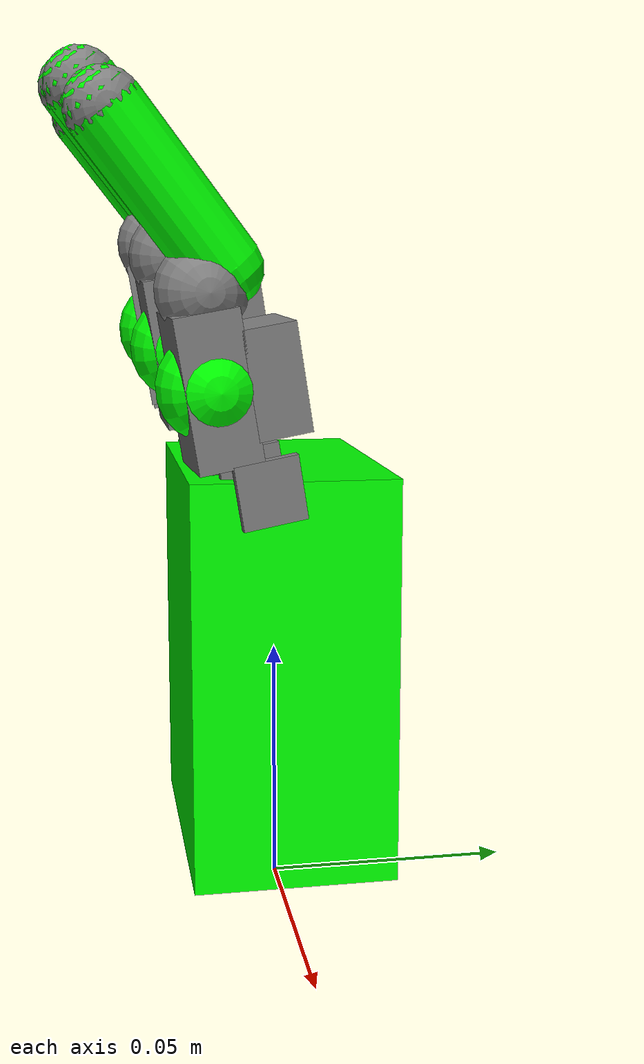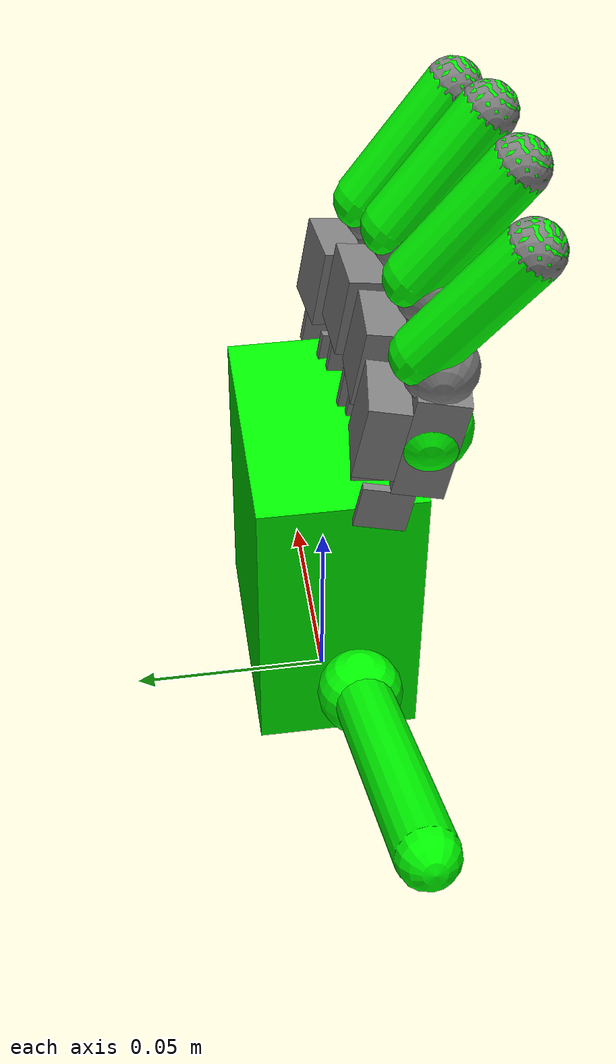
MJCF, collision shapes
<mujoco model="ability_hand">
  <compiler angle="radian" meshdir="assets/" />

  <default>
    <!-- disable all contacts and use explicit collision pairs -->
    <geom density="800" condim="1" contype="0" conaffinity="0" />
    <!-- with this setting, the response time is around 1s -->
    <position kp="100" dampratio="1.0" inheritrange="1" />
    <joint damping="0.0" armature="1.0" frictionloss="0.0" />
    <site size="0.01" type="sphere" rgba="1 0 0 1" group="3" />
    <default class="base">
      <position kp="300" dampratio="3.0" inheritrange="1" />
    </default>
  </default>

  <asset>
    <texture type="skybox" builtin="gradient" rgb1="0.3 0.5 0.7" rgb2="0 0 0" width="512"
      height="3072" />
    <texture type="2d" name="left_groundplane" builtin="checker" mark="edge" rgb1="0.2 0.3 0.4"
      rgb2="0.1 0.2 0.3"
      markrgb="0.8 0.8 0.8" width="300" height="300" />
    <material name="left_groundplane" texture="left_groundplane" texuniform="true"
      texrepeat="5 5"
      reflectance="0.2" />
    <mesh name="left_wristmesh" file="wristmesh.obj" />
    <mesh name="left_wristmesh_C" file="wristmesh_C.obj" />
    <mesh name="left_FB_palm_ref_MIR" file="FB_palm_ref_MIR.obj" />
    <mesh name="left_thumb-F1-MIR" file="thumb-F1-MIR.obj" />
    <mesh name="left_thumb-F1-MIR_C" file="thumb-F1-MIR_C.obj" />
    <mesh name="left_thumb-F2" file="thumb-F2.obj" />
    <mesh name="left_thumb-F2_C" file="thumb-F2_C.obj" />
    <mesh name="left_idx-F1" file="idx-F1.obj" />
    <mesh name="left_idx-F2" file="idx-F2.obj" />
    <mesh name="left_idx-F2_C" file="idx-F2_C.obj" />
  </asset>

  <worldbody>
    <light pos="0 0 3.5" dir="0 0 -1" directional="false" />
    <body name="R_forearm_ty_link">
      <camera name="left_track" pos="-0.868 -0.348 -0.175"
        xyaxes="-0.037 0.999 -0.000 -0.011 -0.000 1.000" />
      <inertial pos="0 0 0" mass="0.1" diaginertia="0.01 0.01 0.01" />
      <joint name="R_forearm_tx_link_joint" pos="0 0 0" axis="1 0 0" type="slide" range="-5 5"
      />
      <body name="R_forearm_tz_link">
        <inertial pos="0 0 0" mass="0.1" diaginertia="0.01 0.01 0.01" />
        <joint name="R_forearm_ty_link_joint" pos="0 0 0" axis="0 1 0" type="slide" range="-5 5"
        />
        <body name="R_forearm_roll_link">
          <inertial pos="0 0 0" mass="0.1" diaginertia="0.01 0.01 0.01" />
          <joint name="R_forearm_tz_link_joint" pos="0 0 0" axis="0 0 1" type="slide" range="-5 5"
          />
          <body name="R_forearm_pitch_link">
            <inertial pos="0 0 0" mass="0.1" diaginertia="0.01 0.01 0.01" />
            <joint name="R_forearm_roll_link_joint" pos="0 0 0" axis="0 0 1" range="-6.2 6.2"
            />
            <body name="R_forearm_yaw_link">
              <inertial pos="0 0 0" mass="0.1" diaginertia="0.01 0.01 0.01" />
              <joint name="R_forearm_pitch_link_joint" pos="0 0 0" axis="1 0 0" range="-6.2 6.2"
              />
              <body name="left_base">
                <inertial pos="0.00928558 -0.0120495 0.0097618"
                  quat="0.206138 0.349162 0.787163 0.464724" mass="0.4"
                  diaginertia="0.00194995 0.00194995 0.00178617" />
                <joint name="R_forearm_yaw_link_joint" pos="0 0 0" axis="0 -1 0" range="-6.2 6.2"
                />
                <geom name="left_wrist_mesh" type="mesh" contype="0" conaffinity="0" group="1"
                  density="0" mesh="left_wristmesh" />
                <geom name="collision_hand_left_palm_0" type="mesh" mesh="left_wristmesh_C"
                  group="3" />
                <geom name="left_palm_mesh" pos="-0.0240477 0.00378125 0.0323296"
                  quat="0.0442297 0.00061027 -0.999021 -2.70192e-05" type="mesh" contype="0"
                  conaffinity="0" group="1" density="0" mesh="left_FB_palm_ref_MIR" />
                <geom name="collision_hand_left_palm_1" pos="-0.0240477 0.00378125 0.0323296"
                  quat="0.0442297 0.00061027 -0.999021 -2.70192e-05" type="mesh"
                  mesh="left_FB_palm_ref_MIR" group="3" />
                <geom type="box" name="collision_hand_left_palm_2" size="0.03 0.02 0.04"
                  pos="0 0 0.05" contype="0" conaffinity="0" group="3"
                  density="0" rgba="0 1 0 1" />
                <site name="left_palm" pos="0 0 0" type="box"
                  size="0.01 0.02 0.03" quat="1 0 0 -1" />
                <body name="left_thumb_L1" pos="-0.0240477 0.00378125 0.0323296"
                  quat="-0.0947972 0.0440301 -0.00419696 0.994514">
                  <inertial pos="0.014606 -0.00189085 -0.00311554"
                    quat="0.306728 0.531258 0.293089 0.733336" mass="0.00268342"
                    diaginertia="8.14795e-05 7.42718e-05 1.14409e-05" />
                  <joint name="left_thumb_q1" pos="0 0 0" axis="0 0 -1" range="-1.8 -0.6"
                  />
                  <geom name="left_thumb_mesh_1" pos="0.0278284 0 0.0147507"
                    quat="0.608761 0.793353 0 0"
                    type="mesh" contype="0" conaffinity="0" group="1" density="0"
                    mesh="left_thumb-F1-MIR" />
                  <geom name="collision_hand_left_thumb_2" pos="0.0278284 0 0.0147507"
                    quat="0.608761 0.793353 0 0" type="mesh"
                    mesh="left_thumb-F1-MIR_C" group="3" />
                  <geom name="collision_hand_left_thumb_3" type="sphere" size="0.01"
                    pos="0.0278284 0 0.0147507" contype="0" conaffinity="0" group="3"
                    density="0" rgba="0 1 0 1" />
                  <body name="left_thumb_L2" pos="0.0278284 0 0.0147507"
                    quat="0.608761 0.793353 0 0">
                    <inertial pos="0.0300205 0.00559476 -0.00415044"
                      quat="0.00721249 0.656735 -0.223684 0.720148" mass="0.0055"
                      diaginertia="0.00180207 0.00170892 0.000287855" />
                    <joint name="left_thumb_q2" pos="0 0 0" axis="0 0 1" range="0 1.0"
                    />
                    <geom name="left_thumb_mesh_2" pos="0.0651867 0.0233402 0.00393483"
                      quat="3.21978e-07 -0.985259 -0.171069 5.59046e-08" type="mesh" contype="0"
                      conaffinity="0" group="1" density="0" mesh="left_thumb-F2" />
                    <geom name="collision_hand_left_thumb_1" pos="0.0651867 0.0233402 0.00393483"
                      quat="3.21978e-07 -0.985259 -0.171069 5.59046e-08" type="mesh"
                      mesh="left_thumb-F2_C" group="3" />
                    <geom name="collision_hand_left_thumb_0" type="capsule" size="0.007"
                      fromto="0 0 0 0.0651867 0.0233402 0.00393483" contype="0" conaffinity="0"
                      group="3"
                      density="0" rgba="0 1 0 1" />
                    <site name="left_thumb_tip" pos="0.0651867 0.0233402 0.00393483" />
                    <site name="track_hand_left_thumb_tip" pos="0.0651867 0.0233402 0.00393483" />
                    <site name="trace_hand_left_thumb_tip" pos="0.0651867 0.0233402 0.00393483" />
                  </body>
                </body>
                <body name="left_index_L1" pos="-0.0279216 -0.00927034 0.0958706"
                  quat="0.685906 0.0469401 -0.714459 -0.129917">
                  <inertial pos="0.0224191 -0.000157982 -1.31987e-05"
                    quat="-0.00406251 0.706621 0.00934715 0.707518" mass="0.00635888"
                    diaginertia="0.000381765 0.000369601 2.96432e-05" />
                  <joint name="left_index_q1" pos="0 0 0" axis="0 0 -1" range="0 1.0"
                  />
                  <geom name="left_index_mesh_1" pos="0.0384727 0.0032577 0"
                    quat="0.999108 0 0 0.0422244" type="mesh" contype="0" conaffinity="0" group="1"
                    density="0" mesh="left_idx-F1" />
                  <geom name="collision_hand_left_index_2" size="0.0085" pos="0.036 -0.00175 0"
                    group="3" />
                  <geom name="collision_hand_left_index_3" size="0.014 0.006 0.008"
                    pos="0.019 -0.0045 0" quat="0.999108 0 0 0.0422374"
                    type="box" group="3" />
                  <geom name="collision_hand_left_index_4" size="0.01 0.005 0.008"
                    pos="0.018 0.006 0" quat="0.999108 0 0 0.0422374"
                    type="box" group="3" />
                  <geom name="collision_hand_left_index_5" size="0.006 0.006 0.001"
                    pos="-0.001 0 0.007" quat="0.999108 0 0 0.0422374"
                    type="box" group="3" />
                  <geom name="collision_hand_left_index_6" size="0.006 0.006 0.001"
                    pos="-0.001 0 -0.007" quat="0.999108 0 0 0.0422374"
                    type="box" group="3" />
                  <geom name="collision_hand_left_index_1" type="sphere" size="0.01"
                    pos="0.019 -0.0045 0" contype="0" conaffinity="0" group="3"
                    density="0" rgba="0 1 0 1" />
                  <body name="left_index_L2" pos="0.0384727 0.0032577 0"
                    quat="0.999108 0 0 0.0422244">
                    <inertial pos="0.0133682 -0.00875392 -2.886e-05"
                      quat="-0.161363 0.673074 0.216775 0.688434" mass="0.00645"
                      diaginertia="0.000264645 0.000263553 1.71391e-05" />
                    <joint name="left_index_q2" pos="0 0 0" axis="0 0 -1" range="0 1.0"
                    />
                    <geom name="left_index_mesh_2" pos="0.0091241 0 0" quat="1 0 0 0" type="mesh"
                      contype="0" conaffinity="0" group="1" density="0" mesh="left_idx-F2" />
                    <geom type="mesh" mesh="left_idx-F2_C" />
                    <geom size="0.007" pos="0.03 -0.016 0" />
                    <geom name="collision_hand_left_index_0" type="capsule" size="0.007"
                      fromto="0 0 0 0.03 -0.016 0" contype="0" conaffinity="0" group="3"
                      density="0" rgba="0 1 0 1" />
                    <site name="left_index_tip" pos="0.03 -0.016 0" />
                    <site name="track_hand_left_index_tip" pos="0.03 -0.016 0" />
                    <site name="trace_hand_left_index_tip" pos="0.03 -0.016 0" />
                  </body>
                </body>
                <body name="left_middle_L1" pos="-0.00841718 -0.0115172 0.0990634"
                  quat="0.704562 0.0715738 -0.698395 -0.103508">
                  <inertial pos="0.0224191 -0.000157982 -1.31987e-05"
                    quat="-0.00406251 0.706621 0.00934715 0.707518" mass="0.00635888"
                    diaginertia="0.000381765 0.000369601 2.96432e-05" />
                  <joint name="left_middle_q1" pos="0 0 0" axis="0 0 -1" range="0 1.0"
                  />
                  <geom name="left_middle_mesh_1" pos="0.0384727 0.0032577 0"
                    quat="0.999108 0 0 0.0422244" type="mesh" contype="0" conaffinity="0" group="1"
                    density="0" mesh="left_idx-F1" />
                  <geom size="0.0085" pos="0.036 -0.00175 0" />
                  <geom size="0.014 0.006 0.008" pos="0.019 -0.0045 0" quat="0.999108 0 0 0.0422374"
                    type="box" />
                  <geom size="0.01 0.005 0.008" pos="0.018 0.006 0" quat="0.999108 0 0 0.0422374"
                    type="box" />
                  <geom size="0.006 0.006 0.001" pos="-0.001 0 0.007" quat="0.999108 0 0 0.0422374"
                    type="box" />
                  <geom size="0.006 0.006 0.001" pos="-0.001 0 -0.007" quat="0.999108 0 0 0.0422374"
                    type="box" />
                  <geom name="collision_hand_left_middle_1" type="sphere" size="0.01"
                    pos="0.019 -0.0045 0" contype="0" conaffinity="0" group="3"
                    density="0" rgba="0 1 0 1" />
                  <body name="left_middle_L2" pos="0.0384727 0.0032577 0"
                    quat="0.999108 0 0 0.0422244">
                    <inertial pos="0.0133682 -0.00875392 -2.886e-05"
                      quat="-0.161363 0.673074 0.216775 0.688434" mass="0.00645"
                      diaginertia="0.000264645 0.000263553 1.71391e-05" />
                    <joint name="left_middle_q2" pos="0 0 0" axis="0 0 -1" range="0 1.0"
                    />
                    <geom name="left_middle_mesh_2" pos="0.0091241 0 0" quat="1 0 0 0" type="mesh"
                      contype="0" conaffinity="0" group="1" density="0" mesh="left_idx-F2" />
                    <geom type="mesh" mesh="left_idx-F2_C" />
                    <geom size="0.007" pos="0.03 -0.016 0" />
                    <geom name="collision_hand_left_middle_0" type="capsule" size="0.007"
                      fromto="0 0 0 0.03 -0.016 0" contype="0" conaffinity="0" group="3"
                      density="0" rgba="0 1 0 1" />
                    <site name="left_middle_tip" pos="0.03 -0.016 0" />
                    <site name="track_hand_left_middle_tip" pos="0.03 -0.016 0" />
                    <site name="trace_hand_left_middle_tip" pos="0.03 -0.016 0" />
                  </body>
                </body>
                <body name="left_ring_L1" pos="0.0117529 -0.0103946 0.0967038"
                  quat="0.721351 0.0986547 -0.681173 -0.0769649">
                  <inertial pos="0.0224191 -0.000157982 -1.31987e-05"
                    quat="-0.00406251 0.706621 0.00934715 0.707518" mass="0.00635888"
                    diaginertia="0.000381765 0.000369601 2.96432e-05" />
                  <joint name="left_ring_q1" pos="0 0 0" axis="0 0 -1" range="0 1.0"
                  />
                  <geom name="left_ring_mesh_1" pos="0.0384727 0.0032577 0"
                    quat="0.999108 0 0 0.0422244"
                    type="mesh" contype="0" conaffinity="0" group="1" density="0"
                    mesh="left_idx-F1" />
                  <geom size="0.0085" pos="0.036 -0.00175 0" />
                  <geom size="0.014 0.006 0.008" pos="0.019 -0.0045 0" quat="0.999108 0 0 0.0422374"
                    type="box" />
                  <geom size="0.01 0.005 0.008" pos="0.018 0.006 0" quat="0.999108 0 0 0.0422374"
                    type="box" />
                  <geom size="0.006 0.006 0.001" pos="-0.001 0 0.007" quat="0.999108 0 0 0.0422374"
                    type="box" />
                  <geom size="0.006 0.006 0.001" pos="-0.001 0 -0.007" quat="0.999108 0 0 0.0422374"
                    type="box" />
                  <geom name="collision_hand_left_ring_1" type="sphere" size="0.01"
                    pos="0.019 -0.0045 0" contype="0" conaffinity="0" group="3"
                    density="0" rgba="0 1 0 1" />
                  <body name="left_ring_L2" pos="0.0384727 0.0032577 0"
                    quat="0.999108 0 0 0.0422244">
                    <inertial pos="0.0133682 -0.00875392 -2.886e-05"
                      quat="-0.161363 0.673074 0.216775 0.688434" mass="0.00645"
                      diaginertia="0.000264645 0.000263553 1.71391e-05" />
                    <joint name="left_ring_q2" pos="0 0 0" axis="0 0 -1" range="0 1.0"
                    />
                    <geom name="left_ring_mesh_2" pos="0.0091241 0 0" quat="1 0 0 0" type="mesh"
                      contype="0" conaffinity="0" group="1" density="0" mesh="left_idx-F2" />
                    <geom type="mesh" mesh="left_idx-F2_C" />
                    <geom size="0.007" pos="0.03 -0.016 0" />
                    <geom name="collision_hand_left_ring_0" type="capsule" size="0.007"
                      fromto="0 0 0 0.03 -0.016 0" contype="0" conaffinity="0" group="3"
                      density="0" rgba="0 1 0 1" />
                    <site name="left_ring_tip" pos="0.03 -0.016 0" />
                    <site name="track_hand_left_ring_tip" pos="0.03 -0.016 0" />
                    <site name="trace_hand_left_ring_tip" pos="0.03 -0.016 0" />
                  </body>
                </body>
                <body name="left_pinky_L1" pos="0.0308633 -0.00716283 0.0907346"
                  quat="0.719226 0.122363 -0.681748 -0.0544096">
                  <inertial pos="0.0224191 -0.000157982 -1.31987e-05"
                    quat="-0.00406251 0.706621 0.00934715 0.707518" mass="0.00635888"
                    diaginertia="0.000381765 0.000369601 2.96432e-05" />
                  <joint name="left_pinky_q1" pos="0 0 0" axis="0 0 -1" range="0 1.0"
                  />
                  <geom name="left_pinky_mesh_1" pos="0.0384727 0.0032577 0"
                    quat="0.999108 0 0 0.0422244" type="mesh" contype="0" conaffinity="0" group="1"
                    density="0" mesh="left_idx-F1" />
                  <geom size="0.0085" pos="0.036 -0.00175 0" />
                  <geom size="0.014 0.006 0.008" pos="0.019 -0.0045 0" quat="0.999108 0 0 0.0422374"
                    type="box" />
                  <geom size="0.01 0.005 0.008" pos="0.018 0.006 0" quat="0.999108 0 0 0.0422374"
                    type="box" />
                  <geom size="0.006 0.006 0.001" pos="-0.001 0 0.007" quat="0.999108 0 0 0.0422374"
                    type="box" />
                  <geom size="0.006 0.006 0.001" pos="-0.001 0 -0.007" quat="0.999108 0 0 0.0422374"
                    type="box" />
                  <geom name="collision_hand_left_pinky_1" type="sphere" size="0.01"
                    pos="0.019 -0.0045 0" contype="0" conaffinity="0" group="3"
                    density="0" rgba="0 1 0 1" />
                  <body name="left_pinky_L2" pos="0.0384727 0.0032577 0"
                    quat="0.999108 0 0 0.0422244">
                    <inertial pos="0.0133682 -0.00875392 -2.886e-05"
                      quat="-0.161363 0.673074 0.216775 0.688434" mass="0.00645"
                      diaginertia="0.000264645 0.000263553 1.71391e-05" />
                    <joint name="left_pinky_q2" pos="0 0 0" axis="0 0 -1" range="0 1.0"
                    />
                    <geom name="left_pinky_mesh_2" pos="0.0091241 0 0" quat="1 0 0 0" type="mesh"
                      contype="0" conaffinity="0" group="1" density="0" mesh="left_idx-F2" />
                    <geom type="mesh" mesh="left_idx-F2_C" />
                    <geom size="0.007" pos="0.03 -0.016 0" />
                    <geom name="collision_hand_left_pinky_0" type="capsule" size="0.007"
                      fromto="0 0 0 0.03 -0.016 0" contype="0" conaffinity="0" group="3"
                      density="0" rgba="0 1 0 1" />
                    <site name="left_pinky_tip" pos="0.03 -0.016 0" />
                    <site name="track_hand_left_pinky_tip" pos="0.03 -0.016 0" />
                    <site name="trace_hand_left_pinky_tip" pos="0.03 -0.016 0" />
                  </body>
                </body>
              </body>
            </body>
          </body>
        </body>
      </body>
    </body>
  </worldbody>
  <actuator>
    <!-- Global position and rotation joints -->
    <position class="base" name="R_forearm_tx_position" joint="R_forearm_tx_link_joint" />
    <position class="base" name="R_forearm_ty_position" joint="R_forearm_ty_link_joint" />
    <position class="base" name="R_forearm_tz_position" joint="R_forearm_tz_link_joint" />
    <position class="base" name="R_forearm_roll_position" joint="R_forearm_roll_link_joint" />
    <position class="base" name="R_forearm_pitch_position" joint="R_forearm_pitch_link_joint" />
    <position class="base" name="R_forearm_yaw_position" joint="R_forearm_yaw_link_joint" />

    <!-- Thumb joints -->
    <position name="left_thumb_q1_position" joint="left_thumb_q1" />
    <position name="left_thumb_q2_position" joint="left_thumb_q2" />

    <!-- Index joints -->
    <position name="left_index_q1_position" joint="left_index_q1" />
    <position name="left_index_q2_position" joint="left_index_q2" />

    <!-- Middle joints -->
    <position name="left_middle_q1_position" joint="left_middle_q1" />
    <position name="left_middle_q2_position" joint="left_middle_q2" />

    <!-- Ring joints -->
    <position name="left_ring_q1_position" joint="left_ring_q1" />
    <position name="left_ring_q2_position" joint="left_ring_q2" />

    <!-- Pinky joints -->
    <position name="left_pinky_q1_position" joint="left_pinky_q1" />
    <position name="left_pinky_q2_position" joint="left_pinky_q2" />

  </actuator>
</mujoco>
